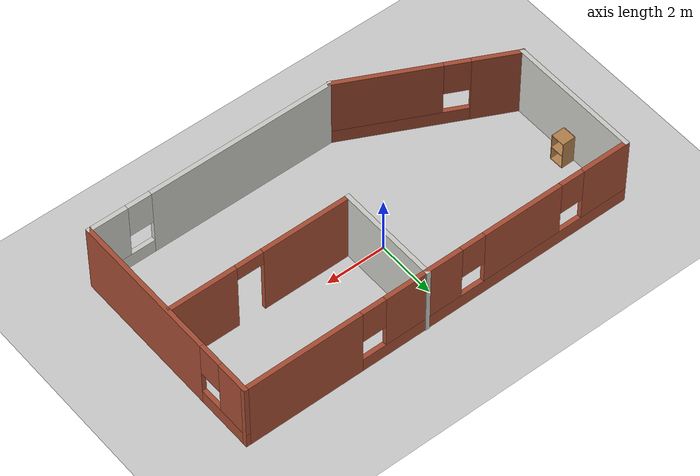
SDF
<sdf version="1.7">
 <world name="default">
  <light name="sun" type="directional">
   <pose>0 0 10 0 -0 0</pose>
   <diffuse>0.8 0.8 0.8 1</diffuse>
   <specular>0.2 0.2 0.2 1</specular>
   <attenuation>
    <range>1000</range>
    <constant>0.9</constant>
    <linear>0.01</linear>
    <quadratic>0.001</quadratic>
   </attenuation>
   <direction>-0.5 0.1 -0.9</direction>
   <spot><inner_angle>0</inner_angle><outer_angle>0</outer_angle><falloff>0</falloff></spot>
  </light>
  <model name="ground_plane">
   <static>1</static>
   <link name="link">
    <collision name="collision">
     <geometry><plane><normal>0 0 1</normal><size>100 100</size></plane></geometry>
     <surface>
      <contact><collide_bitmask>65535</collide_bitmask></contact>
      <friction><ode><mu>100</mu><mu2>50</mu2></ode></friction>
     </surface>
    </collision>
    <visual name="visual">
     <cast_shadows>0</cast_shadows>
     <geometry><plane><normal>0 0 1</normal><size>100 100</size></plane></geometry>
     <material>
      <script><uri>file://media/materials/scripts/gazebo.material</uri><name>Gazebo/Grey</name></script>
     </material>
    </visual>
   </link>
  </model>
  <gravity>0 0 -9.8</gravity>
  <magnetic_field>6e-06 2.3e-05 -4.2e-05</magnetic_field>
  <atmosphere type="adiabatic"/>
  <physics type="ode">
   <max_step_size>0.001</max_step_size>
   <real_time_factor>1</real_time_factor>
   <real_time_update_rate>1000</real_time_update_rate>
  </physics>
  <scene><ambient>0.4 0.4 0.4 1</ambient><background>0.7 0.7 0.7 1</background><shadows>1</shadows></scene>
  <spherical_coordinates>
   <surface_model>EARTH_WGS84</surface_model>
   <latitude_deg>0</latitude_deg>
   <longitude_deg>0</longitude_deg>
   <elevation>0</elevation>
   <heading_deg>0</heading_deg>
  </spherical_coordinates>
  <model name="Untitled">
   <pose>0.35785 -0.55791 0 0 -0 0</pose>
   <link name="Wall_0">
    <pose>2.51281 -3.41976 0 0 -0 0</pose>
    <visual name="Wall_0_Visual_0">
     <pose>-1.06408 0 1.25 0 -0 0</pose>
     <geometry><box><size>6.37183 0.15 2.5</size></box></geometry>
     <material>
      <script><uri>file://media/materials/scripts/gazebo.material</uri><name>Gazebo/CeilingTiled</name></script>
      <ambient>1 1 1 1</ambient>
     </material>
     <meta><layer>0</layer></meta>
    </visual>
    <collision name="Wall_0_Collision_0">
     <geometry><box><size>6.37183 0.15 2.5</size></box></geometry>
     <pose>-1.06408 0 1.25 0 -0 0</pose>
    </collision>
    <visual name="Wall_0_Visual_1">
     <pose>3.18592 0 0.25 0 -0 0</pose>
     <geometry><box><size>2.12817 0.15 0.5</size></box></geometry>
     <material>
      <script><uri>file://media/materials/scripts/gazebo.material</uri><name>Gazebo/CeilingTiled</name></script>
      <ambient>1 1 1 1</ambient>
     </material>
     <meta><layer>0</layer></meta>
    </visual>
    <collision name="Wall_0_Collision_1">
     <geometry><box><size>2.12817 0.15 0.5</size></box></geometry>
     <pose>3.18592 0 0.25 0 -0 0</pose>
    </collision>
    <visual name="Wall_0_Visual_2">
     <pose>3.58591 0 1.5 0 -0 0</pose>
     <geometry><box><size>1.32817 0.15 2</size></box></geometry>
     <material>
      <script><uri>file://media/materials/scripts/gazebo.material</uri><name>Gazebo/CeilingTiled</name></script>
      <ambient>1 1 1 1</ambient>
     </material>
     <meta><layer>0</layer></meta>
    </visual>
    <collision name="Wall_0_Collision_2">
     <geometry><box><size>1.32817 0.15 2</size></box></geometry>
     <pose>3.58591 0 1.5 0 -0 0</pose>
    </collision>
    <visual name="Wall_0_Visual_3">
     <pose>2.52183 0 1.9 0 -0 0</pose>
     <geometry><box><size>0.8 0.15 1.2</size></box></geometry>
     <material>
      <script><uri>file://media/materials/scripts/gazebo.material</uri><name>Gazebo/CeilingTiled</name></script>
      <ambient>1 1 1 1</ambient>
     </material>
     <meta><layer>0</layer></meta>
    </visual>
    <collision name="Wall_0_Collision_3">
     <geometry><box><size>0.8 0.15 1.2</size></box></geometry>
     <pose>2.52183 0 1.9 0 -0 0</pose>
    </collision>
   </link>
   <link name="Wall_1">
    <pose>6.68781 0.005243 0 0 -0 1.5708</pose>
    <visual name="Wall_1_Visual_0">
     <pose>-0.955191 0 1.25 0 -0 0</pose>
     <geometry><box><size>5.08962 0.15 2.5</size></box></geometry>
     <material>
      <script><uri>file://media/materials/scripts/gazebo.material</uri><name>Gazebo/Bricks</name></script>
      <ambient>1 1 1 1</ambient>
     </material>
     <meta><layer>0</layer></meta>
    </visual>
    <collision name="Wall_1_Collision_0">
     <geometry><box><size>5.08962 0.15 2.5</size></box></geometry>
     <pose>-0.955191 0 1.25 0 -0 0</pose>
    </collision>
    <visual name="Wall_1_Visual_1">
     <pose>2.54481 0 0.25 0 -0 0</pose>
     <geometry><box><size>1.91038 0.15 0.5</size></box></geometry>
     <material>
      <script><uri>file://media/materials/scripts/gazebo.material</uri><name>Gazebo/Bricks</name></script>
      <ambient>1 1 1 1</ambient>
     </material>
     <meta><layer>0</layer></meta>
    </visual>
    <collision name="Wall_1_Collision_1">
     <geometry><box><size>1.91038 0.15 0.5</size></box></geometry>
     <pose>2.54481 0 0.25 0 -0 0</pose>
    </collision>
    <visual name="Wall_1_Visual_2">
     <pose>2.94481 0 1.5 0 -0 0</pose>
     <geometry><box><size>1.11038 0.15 2</size></box></geometry>
     <material>
      <script><uri>file://media/materials/scripts/gazebo.material</uri><name>Gazebo/Bricks</name></script>
      <ambient>1 1 1 1</ambient>
     </material>
     <meta><layer>0</layer></meta>
    </visual>
    <collision name="Wall_1_Collision_2">
     <geometry><box><size>1.11038 0.15 2</size></box></geometry>
     <pose>2.94481 0 1.5 0 -0 0</pose>
    </collision>
    <visual name="Wall_1_Visual_3">
     <pose>1.98962 0 1.9 0 -0 0</pose>
     <geometry><box><size>0.8 0.15 1.2</size></box></geometry>
     <material>
      <script><uri>file://media/materials/scripts/gazebo.material</uri><name>Gazebo/Bricks</name></script>
      <ambient>1 1 1 1</ambient>
     </material>
     <meta><layer>0</layer></meta>
    </visual>
    <collision name="Wall_1_Collision_3">
     <geometry><box><size>0.8 0.15 1.2</size></box></geometry>
     <pose>1.98962 0 1.9 0 -0 0</pose>
    </collision>
   </link>
   <link name="Wall_2">
    <pose>0.012811 3.43024 0 0 -0 3.14159</pose>
    <visual name="Wall_2_Visual_0">
     <pose>-4.75038 0 1.25 0 -0 0</pose>
     <geometry><box><size>3.99925 0.15 2.5</size></box></geometry>
     <material>
      <script><uri>file://media/materials/scripts/gazebo.material</uri><name>Gazebo/Bricks</name></script>
      <ambient>1 1 1 1</ambient>
     </material>
     <meta><layer>0</layer></meta>
    </visual>
    <collision name="Wall_2_Collision_0">
     <geometry><box><size>3.99925 0.15 2.5</size></box></geometry>
     <pose>-4.75038 0 1.25 0 -0 0</pose>
    </collision>
    <visual name="Wall_2_Visual_1">
     <pose>1.99962 0 0.25 0 -0 0</pose>
     <geometry><box><size>9.50075 0.15 0.5</size></box></geometry>
     <material>
      <script><uri>file://media/materials/scripts/gazebo.material</uri><name>Gazebo/Bricks</name></script>
      <ambient>1 1 1 1</ambient>
     </material>
     <meta><layer>0</layer></meta>
    </visual>
    <collision name="Wall_2_Collision_1">
     <geometry><box><size>9.50075 0.15 0.5</size></box></geometry>
     <pose>1.99962 0 0.25 0 -0 0</pose>
    </collision>
    <visual name="Wall_2_Visual_2">
     <pose>-0.617203 0 1.5 0 -0 0</pose>
     <geometry><box><size>2.6671 0.15 2</size></box></geometry>
     <material>
      <script><uri>file://media/materials/scripts/gazebo.material</uri><name>Gazebo/Bricks</name></script>
      <ambient>1 1 1 1</ambient>
     </material>
     <meta><layer>0</layer></meta>
    </visual>
    <collision name="Wall_2_Collision_2">
     <geometry><box><size>2.6671 0.15 2</size></box></geometry>
     <pose>-0.617203 0 1.5 0 -0 0</pose>
    </collision>
    <visual name="Wall_2_Visual_3">
     <pose>2.89412 0 1.5 0 -0 0</pose>
     <geometry><box><size>2.75554 0.15 2</size></box></geometry>
     <material>
      <script><uri>file://media/materials/scripts/gazebo.material</uri><name>Gazebo/Bricks</name></script>
      <ambient>1 1 1 1</ambient>
     </material>
     <meta><layer>0</layer></meta>
    </visual>
    <collision name="Wall_2_Collision_3">
     <geometry><box><size>2.75554 0.15 2</size></box></geometry>
     <pose>2.89412 0 1.5 0 -0 0</pose>
    </collision>
    <visual name="Wall_2_Visual_4">
     <pose>5.91094 0 1.5 0 -0 0</pose>
     <geometry><box><size>1.67811 0.15 2</size></box></geometry>
     <material>
      <script><uri>file://media/materials/scripts/gazebo.material</uri><name>Gazebo/Bricks</name></script>
      <ambient>1 1 1 1</ambient>
     </material>
     <meta><layer>0</layer></meta>
    </visual>
    <collision name="Wall_2_Collision_4">
     <geometry><box><size>1.67811 0.15 2</size></box></geometry>
     <pose>5.91094 0 1.5 0 -0 0</pose>
    </collision>
    <visual name="Wall_2_Visual_5">
     <pose>-2.35075 0 1.9 0 -0 0</pose>
     <geometry><box><size>0.8 0.15 1.2</size></box></geometry>
     <material>
      <script><uri>file://media/materials/scripts/gazebo.material</uri><name>Gazebo/Bricks</name></script>
      <ambient>1 1 1 1</ambient>
     </material>
     <meta><layer>0</layer></meta>
    </visual>
    <collision name="Wall_2_Collision_5">
     <geometry><box><size>0.8 0.15 1.2</size></box></geometry>
     <pose>-2.35075 0 1.9 0 -0 0</pose>
    </collision>
    <visual name="Wall_2_Visual_6">
     <pose>1.11634 0 1.9 0 -0 0</pose>
     <geometry><box><size>0.8 0.15 1.2</size></box></geometry>
     <material>
      <script><uri>file://media/materials/scripts/gazebo.material</uri><name>Gazebo/Bricks</name></script>
      <ambient>1 1 1 1</ambient>
     </material>
     <meta><layer>0</layer></meta>
    </visual>
    <collision name="Wall_2_Collision_6">
     <geometry><box><size>0.8 0.15 1.2</size></box></geometry>
     <pose>1.11634 0 1.9 0 -0 0</pose>
    </collision>
    <visual name="Wall_2_Visual_7">
     <pose>4.67189 0 1.9 0 -0 0</pose>
     <geometry><box><size>0.8 0.15 1.2</size></box></geometry>
     <material>
      <script><uri>file://media/materials/scripts/gazebo.material</uri><name>Gazebo/Bricks</name></script>
      <ambient>1 1 1 1</ambient>
     </material>
     <meta><layer>0</layer></meta>
    </visual>
    <collision name="Wall_2_Collision_7">
     <geometry><box><size>0.8 0.15 1.2</size></box></geometry>
     <pose>4.67189 0 1.9 0 -0 0</pose>
    </collision>
   </link>
   <link name="Wall_3">
    <collision name="Wall_3_Collision">
     <geometry><box><size>4.5 0.15 2.5</size></box></geometry>
     <pose>0 0 1.25 0 -0 0</pose>
    </collision>
    <visual name="Wall_3_Visual">
     <pose>0 0 1.25 0 -0 0</pose>
     <geometry><box><size>4.5 0.15 2.5</size></box></geometry>
     <material>
      <script><uri>file://media/materials/scripts/gazebo.material</uri><name>Gazebo/CeilingTiled</name></script>
      <ambient>1 1 1 1</ambient>
     </material>
     <meta><layer>0</layer></meta>
    </visual>
    <pose>-6.66219 1.25524 0 0 -0 -1.5708</pose>
   </link>
   <link name="Wall_4">
    <pose>-4.16219 -2.16976 0 0 -0 -0.463648</pose>
    <visual name="Wall_4_Visual_0">
     <pose>-2.07652 0 1.25 0 -0 0</pose>
     <geometry><box><size>1.58714 0.15 2.5</size></box></geometry>
     <material>
      <script><uri>file://media/materials/scripts/gazebo.material</uri><name>Gazebo/Bricks</name></script>
      <ambient>1 1 1 1</ambient>
     </material>
     <meta><layer>0</layer></meta>
    </visual>
    <collision name="Wall_4_Collision_0">
     <geometry><box><size>1.58714 0.15 2.5</size></box></geometry>
     <pose>-2.07652 0 1.25 0 -0 0</pose>
    </collision>
    <visual name="Wall_4_Visual_1">
     <pose>0.79357 0 0.25 0 -0 0</pose>
     <geometry><box><size>4.15303 0.15 0.5</size></box></geometry>
     <material>
      <script><uri>file://media/materials/scripts/gazebo.material</uri><name>Gazebo/Bricks</name></script>
      <ambient>1 1 1 1</ambient>
     </material>
     <meta><layer>0</layer></meta>
    </visual>
    <collision name="Wall_4_Collision_1">
     <geometry><box><size>4.15303 0.15 0.5</size></box></geometry>
     <pose>0.79357 0 0.25 0 -0 0</pose>
    </collision>
    <visual name="Wall_4_Visual_2">
     <pose>1.19357 0 1.5 0 -0 0</pose>
     <geometry><box><size>3.35303 0.15 2</size></box></geometry>
     <material>
      <script><uri>file://media/materials/scripts/gazebo.material</uri><name>Gazebo/Bricks</name></script>
      <ambient>1 1 1 1</ambient>
     </material>
     <meta><layer>0</layer></meta>
    </visual>
    <collision name="Wall_4_Collision_2">
     <geometry><box><size>3.35303 0.15 2</size></box></geometry>
     <pose>1.19357 0 1.5 0 -0 0</pose>
    </collision>
    <visual name="Wall_4_Visual_3">
     <pose>-0.882945 0 1.9 0 -0 0</pose>
     <geometry><box><size>0.8 0.15 1.2</size></box></geometry>
     <material>
      <script><uri>file://media/materials/scripts/gazebo.material</uri><name>Gazebo/Bricks</name></script>
      <ambient>1 1 1 1</ambient>
     </material>
     <meta><layer>0</layer></meta>
    </visual>
    <collision name="Wall_4_Collision_3">
     <geometry><box><size>0.8 0.15 1.2</size></box></geometry>
     <pose>-0.882945 0 1.9 0 -0 0</pose>
    </collision>
   </link>
   <link name="Wall_6">
    <collision name="Wall_6_Collision">
     <geometry><box><size>3.5 0.15 2.5</size></box></geometry>
     <pose>0 0 1.25 0 -0 0</pose>
    </collision>
    <visual name="Wall_6_Visual">
     <pose>0 0 1.25 0 -0 0</pose>
     <geometry><box><size>3.5 0.15 2.5</size></box></geometry>
     <material>
      <script><uri>file://media/materials/scripts/gazebo.material</uri><name>Gazebo/CeilingTiled</name></script>
      <ambient>1 1 1 1</ambient>
     </material>
     <meta><layer>0</layer></meta>
    </visual>
    <pose>0.506189 1.77038 0 0 -0 -1.5708</pose>
   </link>
   <link name="Wall_7">
    <pose>3.55619 0.09538 0 0 -0 0</pose>
    <visual name="Wall_7_Visual_0">
     <pose>-1.5878 0 1.25 0 -0 0</pose>
     <geometry><box><size>3.07441 0.15 2.5</size></box></geometry>
     <material>
      <script><uri>file://media/materials/scripts/gazebo.material</uri><name>Gazebo/Bricks</name></script>
      <ambient>1 1 1 1</ambient>
     </material>
     <meta><layer>0</layer></meta>
    </visual>
    <collision name="Wall_7_Collision_0">
     <geometry><box><size>3.07441 0.15 2.5</size></box></geometry>
     <pose>-1.5878 0 1.25 0 -0 0</pose>
    </collision>
    <visual name="Wall_7_Visual_1">
     <pose>1.9872 0 1.25 0 -0 0</pose>
     <geometry><box><size>2.27559 0.15 2.5</size></box></geometry>
     <material>
      <script><uri>file://media/materials/scripts/gazebo.material</uri><name>Gazebo/Bricks</name></script>
      <ambient>1 1 1 1</ambient>
     </material>
     <meta><layer>0</layer></meta>
    </visual>
    <collision name="Wall_7_Collision_1">
     <geometry><box><size>2.27559 0.15 2.5</size></box></geometry>
     <pose>1.9872 0 1.25 0 -0 0</pose>
    </collision>
    <visual name="Wall_7_Visual_2">
     <pose>0.399406 0 2.25 0 -0 0</pose>
     <geometry><box><size>0.9 0.15 0.5</size></box></geometry>
     <material>
      <script><uri>file://media/materials/scripts/gazebo.material</uri><name>Gazebo/Bricks</name></script>
      <ambient>1 1 1 1</ambient>
     </material>
     <meta><layer>0</layer></meta>
    </visual>
    <collision name="Wall_7_Collision_2">
     <geometry><box><size>0.9 0.15 0.5</size></box></geometry>
     <pose>0.399406 0 2.25 0 -0 0</pose>
    </collision>
   </link>
   <static>1</static>
  </model>
  <model name="bookshelf">
   <static>1</static>
   <link name="link">
    <inertial><mass>1</mass></inertial>
    <collision name="back">
     <pose>0 0.005 0.6 0 -0 0</pose>
     <geometry><box><size>0.9 0.01 1.2</size></box></geometry>
    </collision>
    <visual name="visual1">
     <pose>0 0.005 0.6 0 -0 0</pose>
     <geometry><box><size>0.9 0.01 1.2</size></box></geometry>
     <material>
      <script><uri>file://media/materials/scripts/gazebo.material</uri><name>Gazebo/Wood</name></script>
     </material>
    </visual>
    <collision name="left_side">
     <pose>0.45 -0.195 0.6 0 -0 0</pose>
     <geometry><box><size>0.02 0.4 1.2</size></box></geometry>
    </collision>
    <visual name="visual2">
     <pose>0.45 -0.195 0.6 0 -0 0</pose>
     <geometry><box><size>0.02 0.4 1.2</size></box></geometry>
     <material>
      <script><uri>file://media/materials/scripts/gazebo.material</uri><name>Gazebo/Wood</name></script>
     </material>
    </visual>
    <collision name="right_side">
     <pose>-0.45 -0.195 0.6 0 -0 0</pose>
     <geometry><box><size>0.02 0.4 1.2</size></box></geometry>
    </collision>
    <visual name="visual3">
     <pose>-0.45 -0.195 0.6 0 -0 0</pose>
     <geometry><box><size>0.02 0.4 1.2</size></box></geometry>
     <material>
      <script><uri>file://media/materials/scripts/gazebo.material</uri><name>Gazebo/Wood</name></script>
     </material>
    </visual>
    <collision name="bottom">
     <pose>0 -0.195 0.03 0 -0 0</pose>
     <geometry><box><size>0.88 0.4 0.06</size></box></geometry>
    </collision>
    <visual name="visual4">
     <pose>0 -0.195 0.03 0 -0 0</pose>
     <geometry><box><size>0.88 0.4 0.06</size></box></geometry>
     <material>
      <script><uri>file://media/materials/scripts/gazebo.material</uri><name>Gazebo/Wood</name></script>
     </material>
    </visual>
    <collision name="top">
     <pose>0 -0.195 1.19 0 -0 0</pose>
     <geometry><box><size>0.88 0.4 0.02</size></box></geometry>
    </collision>
    <visual name="visual5">
     <pose>0 -0.195 1.19 0 -0 0</pose>
     <geometry><box><size>0.88 0.4 0.02</size></box></geometry>
     <material>
      <script><uri>file://media/materials/scripts/gazebo.material</uri><name>Gazebo/Wood</name></script>
     </material>
    </visual>
    <collision name="low_shelf">
     <pose>0 -0.195 0.43 0 -0 0</pose>
     <geometry><box><size>0.88 0.4 0.02</size></box></geometry>
    </collision>
    <visual name="visual6">
     <pose>0 -0.195 0.43 0 -0 0</pose>
     <geometry><box><size>0.88 0.4 0.02</size></box></geometry>
     <material>
      <script><uri>file://media/materials/scripts/gazebo.material</uri><name>Gazebo/Wood</name></script>
     </material>
    </visual>
    <collision name="high_shelf">
     <pose>0 -0.195 0.8 0 -0 0</pose>
     <geometry><box><size>0.88 0.4 0.02</size></box></geometry>
    </collision>
    <visual name="visual7">
     <pose>0 -0.195 0.8 0 -0 0</pose>
     <geometry><box><size>0.88 0.4 0.02</size></box></geometry>
     <material>
      <script><uri>file://media/materials/scripts/gazebo.material</uri><name>Gazebo/Wood</name></script>
     </material>
    </visual>
   </link>
   <pose>-2.42939 2.78624 0 0 -0 0</pose>
  </model>
  <model name="cabinet">
   <static>1</static>
   <link name="cabinet_bottom_plate">
    <inertial>
     <pose>0 0 -1 0 -0 0</pose>
     <inertia><ixx>2.05</ixx><ixy>0</ixy><ixz>0</ixz><iyy>2.05</iyy><iyz>0</iyz><izz>2.05</izz></inertia>
     <mass>25</mass>
    </inertial>
    <collision name="cabinet_bottom_plate_geom">
     <pose>0 0 0.01 0 -0 0</pose>
     <geometry><box><size>0.45 0.45 0.02</size></box></geometry>
    </collision>
    <visual name="cabinet_bottom_plate_geom_visual">
     <pose>0 0 0.01 0 -0 0</pose>
     <geometry><box><size>0.45 0.45 0.02</size></box></geometry>
     <material>
      <script><uri>file://media/materials/scripts/gazebo.material</uri><name>Gazebo/Wood</name></script>
     </material>
    </visual>
    <collision name="cabinet_bottom_plate_geom_cabinet_back_plate">
     <pose>0.235 0 0.51 0 -0 0</pose>
     <geometry><box><size>0.02 0.45 1.02</size></box></geometry>
    </collision>
    <visual name="cabinet_bottom_plate_geom_cabinet_back_plate_visual">
     <pose>0.235 0 0.51 0 -0 0</pose>
     <geometry><box><size>0.02 0.45 1.02</size></box></geometry>
     <material>
      <script><uri>file://media/materials/scripts/gazebo.material</uri><name>Gazebo/Wood</name></script>
     </material>
    </visual>
    <collision name="cabinet_bottom_plate_geom_cabinet_left_plate">
     <pose>0 0.235 0.51 0 -0 0</pose>
     <geometry><box><size>0.45 0.02 1.02</size></box></geometry>
    </collision>
    <visual name="cabinet_bottom_plate_geom_cabinet_left_plate_visual">
     <pose>0 0.235 0.51 0 -0 0</pose>
     <geometry><box><size>0.45 0.02 1.02</size></box></geometry>
     <material>
      <script><uri>file://media/materials/scripts/gazebo.material</uri><name>Gazebo/Wood</name></script>
     </material>
    </visual>
    <collision name="cabinet_bottom_plate_geom_cabinet_middle_plate">
     <pose>0 0 0.51 0 -0 0</pose>
     <geometry><box><size>0.45 0.45 0.02</size></box></geometry>
    </collision>
    <visual name="cabinet_bottom_plate_geom_cabinet_middle_plate_visual">
     <pose>0 0 0.51 0 -0 0</pose>
     <geometry><box><size>0.45 0.45 0.02</size></box></geometry>
     <material>
      <script><uri>file://media/materials/scripts/gazebo.material</uri><name>Gazebo/Wood</name></script>
     </material>
    </visual>
    <collision name="cabinet_bottom_plate_geom_cabinet_right_plate">
     <pose>0 -0.235 0.51 0 -0 0</pose>
     <geometry><box><size>0.45 0.02 1.02</size></box></geometry>
    </collision>
    <visual name="cabinet_bottom_plate_geom_cabinet_right_plate_visual">
     <pose>0 -0.235 0.51 0 -0 0</pose>
     <geometry><box><size>0.45 0.02 1.02</size></box></geometry>
     <material>
      <script><uri>file://media/materials/scripts/gazebo.material</uri><name>Gazebo/Wood</name></script>
     </material>
    </visual>
    <collision name="cabinet_bottom_plate_geom_cabinet_top_plate">
     <pose>0 0 1.01 0 -0 0</pose>
     <geometry><box><size>0.45 0.45 0.02</size></box></geometry>
    </collision>
    <visual name="cabinet_bottom_plate_geom_cabinet_top_plate_visual">
     <pose>0 0 1.01 0 -0 0</pose>
     <geometry><box><size>0.45 0.45 0.02</size></box></geometry>
     <material>
      <script><uri>file://media/materials/scripts/gazebo.material</uri><name>Gazebo/Wood</name></script>
     </material>
    </visual>
   </link>
   <pose>-5.98445 0.721796 0 0 0 -3.12596</pose>
  </model>
 </world>
</sdf>
